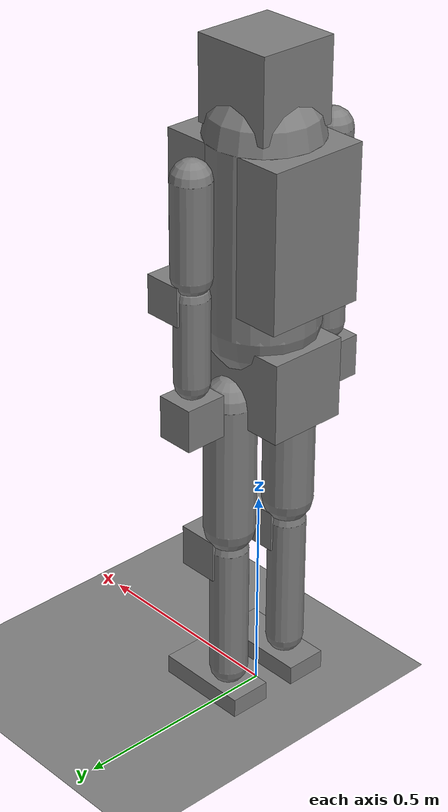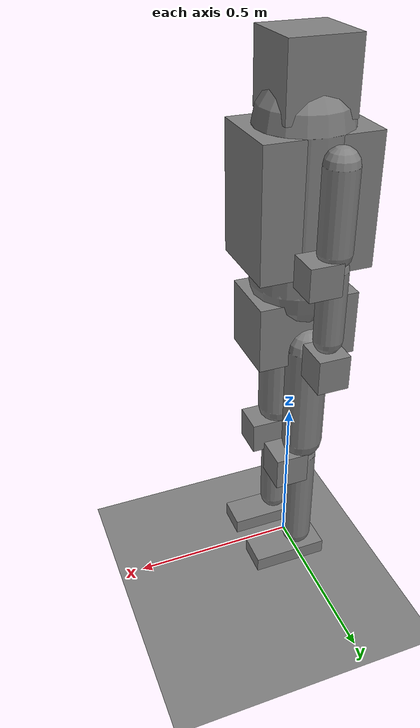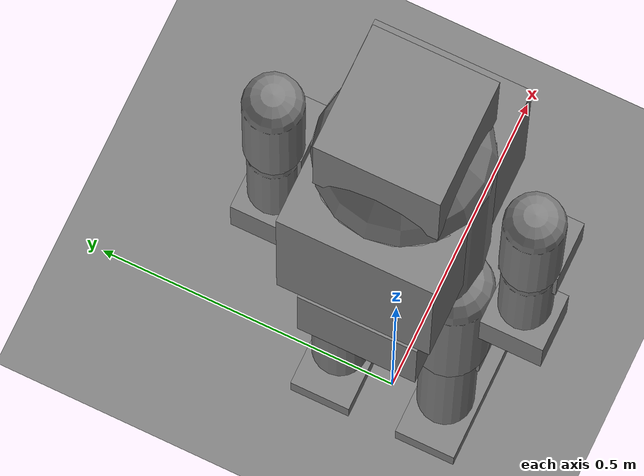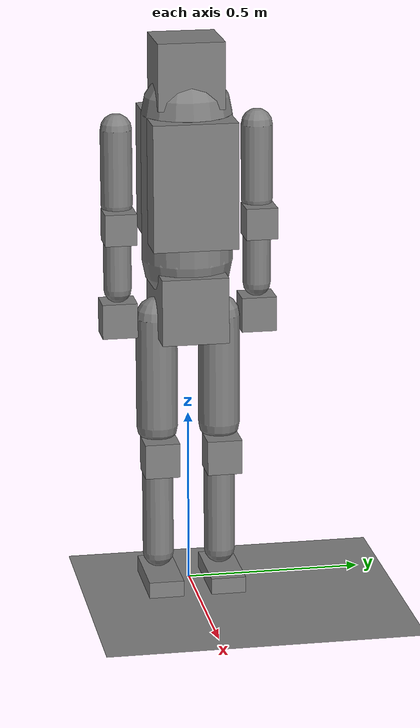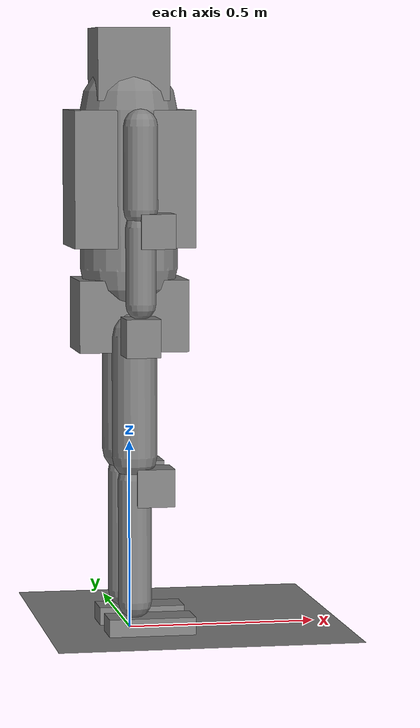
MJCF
<mujoco model="multibrain_humanoid">
  <option timestep="0.005"><flag multiccd="disable"/></option>
  <default>
    <joint type="hinge" armature="0.02" damping="2" frictionloss="0.2" limited="true" solreflimit="0.01 1" solimplimit="0.99 0.999 0.001"/>
    <geom condim="3" friction="1.0 0.005 0.0001" solimp="0.9 0.99 0.001" solref="0.01 1"/>
    <general dyntype="filter" dynprm="0.04" ctrlrange="-1 1" ctrllimited="true"/>
  </default>
  <worldbody>
    <geom name="floor" type="plane" size="0 0 1" margin="0.01"/>
    <body name="pelvis" pos="0 0 0.84">
      <freejoint/>
      <geom type="box" size="0.14 0.09 0.09" mass="6.2"/>
      <site name="imu"/>
      <site name="touch_pelvis" type="box" pos="0 0 0" size="0.145 0.095 0.095"/>
      <body name="torso" pos="0 0 0.12">
      <joint name="waist_z" axis="0 0 1" range="-40 40"/>
      <joint name="waist_y" axis="1 0 0" range="-30 30"/>
      <joint name="waist_x" axis="0 -1 0" range="-60 30"/>
      <geom type="capsule" fromto="0 0 0 0 0 0.42" size="0.13" mass="15.0"/>
      <site name="torso_frame"/>
      <site name="touch_chest" type="box" pos="0.10 0 0.24" size="0.06 0.12 0.18"/>
      <site name="touch_back" type="box" pos="-0.10 0 0.24" size="0.06 0.12 0.18"/>
      <body name="head" pos="0 0 0.48">
      <joint name="neck_y" axis="1 0 0" range="-45 45"/>
      <joint name="neck_z" axis="0 0 1" range="-60 60"/>
      <geom type="sphere" pos="0 0 0.06" size="0.09" mass="3.3"/>
      <site name="touch_head" type="box" pos="0 0 0.06" size="0.095 0.095 0.095"/>
      </body>
      <body name="upper_arm_L" pos="0 0.2 0.38">
      <joint name="shoulder_L_x" axis="0 -1 0" range="-60 170"/>
      <joint name="shoulder_L_y" axis="1 0 0" range="-30 150"/>
      <joint name="shoulder_L_z" axis="0 0 1" range="-80 80"/>
      <geom type="capsule" fromto="0 0 0 0 0 -0.215" size="0.045" mass="1.3"/>
      <body name="forearm_L" pos="0 0 -0.26">
      <joint name="elbow_L" axis="0 -1 0" range="0 150"/>
      <geom type="capsule" fromto="0 0 0 0 0 -0.200" size="0.04" mass="0.7"/>
      <site name="touch_elbow_L" type="box" pos="0.04 0 -0.01" size="0.045 0.045 0.045"/>
      <body name="hand_L" pos="0 0 -0.24">
      <joint name="wrist_L" axis="0 -1 0" range="-70 70"/>
      <geom type="box" pos="0 0 -0.045" size="0.035 0.045 0.045" mass="0.3"/>
      <site name="touch_hand_L" type="box" pos="0 0 -0.045" size="0.045 0.05 0.05"/>
      </body>
      </body>
      </body>
      <body name="upper_arm_R" pos="0 -0.2 0.38">
      <joint name="shoulder_R_x" axis="0 -1 0" range="-60 170"/>
      <joint name="shoulder_R_y" axis="-1 0 0" range="-30 150"/>
      <joint name="shoulder_R_z" axis="0 0 -1" range="-80 80"/>
      <geom type="capsule" fromto="0 0 0 0 0 -0.215" size="0.045" mass="1.3"/>
      <body name="forearm_R" pos="0 0 -0.26">
      <joint name="elbow_R" axis="0 -1 0" range="0 150"/>
      <geom type="capsule" fromto="0 0 0 0 0 -0.200" size="0.04" mass="0.7"/>
      <site name="touch_elbow_R" type="box" pos="0.04 0 -0.01" size="0.045 0.045 0.045"/>
      <body name="hand_R" pos="0 0 -0.24">
      <joint name="wrist_R" axis="0 -1 0" range="-70 70"/>
      <geom type="box" pos="0 0 -0.045" size="0.035 0.045 0.045" mass="0.3"/>
      <site name="touch_hand_R" type="box" pos="0 0 -0.045" size="0.045 0.05 0.05"/>
      </body>
      </body>
      </body>
      </body>
      <body name="thigh_L" pos="0 0.09 -0.05">
      <joint name="hip_L_x" axis="0 -1 0" range="-30 120"/>
      <joint name="hip_L_y" axis="1 0 0" range="-40 40"/>
      <joint name="hip_L_z" axis="0 0 1" range="-40 40"/>
      <geom type="capsule" fromto="0 0 0 0 0 -0.320" size="0.06" mass="7.4"/>
      <body name="shin_L" pos="0 0 -0.38">
      <joint name="knee_L" axis="0 1 0" range="0 150"/>
      <geom type="capsule" fromto="0 0 0 0 0 -0.325" size="0.045" mass="2.4"/>
      <site name="touch_knee_L" type="box" pos="0.05 0 -0.02" size="0.05 0.05 0.05"/>
      <body name="foot_L" pos="0 0 -0.37">
      <joint name="ankle_L_x" axis="0 -1 0" range="-45 30"/>
      <joint name="ankle_L_y" axis="1 0 0" range="-25 25"/>
      <geom type="box" pos="0.04 0 -0.02" size="0.11 0.045 0.02" mass="0.65"/>
      <site name="touch_foot_L" type="box" pos="0.04 0 -0.02" size="0.115 0.05 0.025"/>
      </body>
      </body>
      </body>
      <body name="thigh_R" pos="0 -0.09 -0.05">
      <joint name="hip_R_x" axis="0 -1 0" range="-30 120"/>
      <joint name="hip_R_y" axis="-1 0 0" range="-40 40"/>
      <joint name="hip_R_z" axis="0 0 -1" range="-40 40"/>
      <geom type="capsule" fromto="0 0 0 0 0 -0.320" size="0.06" mass="7.4"/>
      <body name="shin_R" pos="0 0 -0.38">
      <joint name="knee_R" axis="0 1 0" range="0 150"/>
      <geom type="capsule" fromto="0 0 0 0 0 -0.325" size="0.045" mass="2.4"/>
      <site name="touch_knee_R" type="box" pos="0.05 0 -0.02" size="0.05 0.05 0.05"/>
      <body name="foot_R" pos="0 0 -0.37">
      <joint name="ankle_R_x" axis="0 -1 0" range="-45 30"/>
      <joint name="ankle_R_y" axis="-1 0 0" range="-25 25"/>
      <geom type="box" pos="0.04 0 -0.02" size="0.11 0.045 0.02" mass="0.65"/>
      <site name="touch_foot_R" type="box" pos="0.04 0 -0.02" size="0.115 0.05 0.025"/>
      </body>
      </body>
      </body>
    </body>
  </worldbody>
  <contact>
    <exclude body1="pelvis" body2="torso"/>
    <exclude body1="torso" body2="head"/>
    <exclude body1="torso" body2="upper_arm_L"/>
    <exclude body1="torso" body2="upper_arm_R"/>
    <exclude body1="upper_arm_L" body2="forearm_L"/>
    <exclude body1="upper_arm_R" body2="forearm_R"/>
    <exclude body1="forearm_L" body2="hand_L"/>
    <exclude body1="forearm_R" body2="hand_R"/>
    <exclude body1="pelvis" body2="thigh_L"/>
    <exclude body1="pelvis" body2="thigh_R"/>
    <exclude body1="thigh_L" body2="shin_L"/>
    <exclude body1="thigh_R" body2="shin_R"/>
    <exclude body1="shin_L" body2="foot_L"/>
    <exclude body1="shin_R" body2="foot_R"/>
  </contact>
  <actuator>
    <general name="waist_z" joint="waist_z" gear="60"/>
    <general name="waist_y" joint="waist_y" gear="80"/>
    <general name="waist_x" joint="waist_x" gear="100"/>
    <general name="neck_y" joint="neck_y" gear="15"/>
    <general name="neck_z" joint="neck_z" gear="15"/>
    <general name="shoulder_L_x" joint="shoulder_L_x" gear="40"/>
    <general name="shoulder_L_y" joint="shoulder_L_y" gear="40"/>
    <general name="shoulder_L_z" joint="shoulder_L_z" gear="25"/>
    <general name="elbow_L" joint="elbow_L" gear="30"/>
    <general name="wrist_L" joint="wrist_L" gear="8"/>
    <general name="hip_L_x" joint="hip_L_x" gear="120"/>
    <general name="hip_L_y" joint="hip_L_y" gear="80"/>
    <general name="hip_L_z" joint="hip_L_z" gear="50"/>
    <general name="knee_L" joint="knee_L" gear="120"/>
    <general name="ankle_L_x" joint="ankle_L_x" gear="80"/>
    <general name="ankle_L_y" joint="ankle_L_y" gear="30"/>
    <general name="shoulder_R_x" joint="shoulder_R_x" gear="40"/>
    <general name="shoulder_R_y" joint="shoulder_R_y" gear="40"/>
    <general name="shoulder_R_z" joint="shoulder_R_z" gear="25"/>
    <general name="elbow_R" joint="elbow_R" gear="30"/>
    <general name="wrist_R" joint="wrist_R" gear="8"/>
    <general name="hip_R_x" joint="hip_R_x" gear="120"/>
    <general name="hip_R_y" joint="hip_R_y" gear="80"/>
    <general name="hip_R_z" joint="hip_R_z" gear="50"/>
    <general name="knee_R" joint="knee_R" gear="120"/>
    <general name="ankle_R_x" joint="ankle_R_x" gear="80"/>
    <general name="ankle_R_y" joint="ankle_R_y" gear="30"/>
  </actuator>
  <sensor>
    <jointpos name="jointpos_waist_z" joint="waist_z"/>
    <jointpos name="jointpos_waist_y" joint="waist_y"/>
    <jointpos name="jointpos_waist_x" joint="waist_x"/>
    <jointpos name="jointpos_neck_y" joint="neck_y"/>
    <jointpos name="jointpos_neck_z" joint="neck_z"/>
    <jointpos name="jointpos_shoulder_L_x" joint="shoulder_L_x"/>
    <jointpos name="jointpos_shoulder_L_y" joint="shoulder_L_y"/>
    <jointpos name="jointpos_shoulder_L_z" joint="shoulder_L_z"/>
    <jointpos name="jointpos_elbow_L" joint="elbow_L"/>
    <jointpos name="jointpos_wrist_L" joint="wrist_L"/>
    <jointpos name="jointpos_hip_L_x" joint="hip_L_x"/>
    <jointpos name="jointpos_hip_L_y" joint="hip_L_y"/>
    <jointpos name="jointpos_hip_L_z" joint="hip_L_z"/>
    <jointpos name="jointpos_knee_L" joint="knee_L"/>
    <jointpos name="jointpos_ankle_L_x" joint="ankle_L_x"/>
    <jointpos name="jointpos_ankle_L_y" joint="ankle_L_y"/>
    <jointpos name="jointpos_shoulder_R_x" joint="shoulder_R_x"/>
    <jointpos name="jointpos_shoulder_R_y" joint="shoulder_R_y"/>
    <jointpos name="jointpos_shoulder_R_z" joint="shoulder_R_z"/>
    <jointpos name="jointpos_elbow_R" joint="elbow_R"/>
    <jointpos name="jointpos_wrist_R" joint="wrist_R"/>
    <jointpos name="jointpos_hip_R_x" joint="hip_R_x"/>
    <jointpos name="jointpos_hip_R_y" joint="hip_R_y"/>
    <jointpos name="jointpos_hip_R_z" joint="hip_R_z"/>
    <jointpos name="jointpos_knee_R" joint="knee_R"/>
    <jointpos name="jointpos_ankle_R_x" joint="ankle_R_x"/>
    <jointpos name="jointpos_ankle_R_y" joint="ankle_R_y"/>
    <jointvel name="jointvel_waist_z" joint="waist_z"/>
    <jointvel name="jointvel_waist_y" joint="waist_y"/>
    <jointvel name="jointvel_waist_x" joint="waist_x"/>
    <jointvel name="jointvel_neck_y" joint="neck_y"/>
    <jointvel name="jointvel_neck_z" joint="neck_z"/>
    <jointvel name="jointvel_shoulder_L_x" joint="shoulder_L_x"/>
    <jointvel name="jointvel_shoulder_L_y" joint="shoulder_L_y"/>
    <jointvel name="jointvel_shoulder_L_z" joint="shoulder_L_z"/>
    <jointvel name="jointvel_elbow_L" joint="elbow_L"/>
    <jointvel name="jointvel_wrist_L" joint="wrist_L"/>
    <jointvel name="jointvel_hip_L_x" joint="hip_L_x"/>
    <jointvel name="jointvel_hip_L_y" joint="hip_L_y"/>
    <jointvel name="jointvel_hip_L_z" joint="hip_L_z"/>
    <jointvel name="jointvel_knee_L" joint="knee_L"/>
    <jointvel name="jointvel_ankle_L_x" joint="ankle_L_x"/>
    <jointvel name="jointvel_ankle_L_y" joint="ankle_L_y"/>
    <jointvel name="jointvel_shoulder_R_x" joint="shoulder_R_x"/>
    <jointvel name="jointvel_shoulder_R_y" joint="shoulder_R_y"/>
    <jointvel name="jointvel_shoulder_R_z" joint="shoulder_R_z"/>
    <jointvel name="jointvel_elbow_R" joint="elbow_R"/>
    <jointvel name="jointvel_wrist_R" joint="wrist_R"/>
    <jointvel name="jointvel_hip_R_x" joint="hip_R_x"/>
    <jointvel name="jointvel_hip_R_y" joint="hip_R_y"/>
    <jointvel name="jointvel_hip_R_z" joint="hip_R_z"/>
    <jointvel name="jointvel_knee_R" joint="knee_R"/>
    <jointvel name="jointvel_ankle_R_x" joint="ankle_R_x"/>
    <jointvel name="jointvel_ankle_R_y" joint="ankle_R_y"/>
    <framequat name="framequat_imu" objtype="site" objname="imu"/>
    <gyro name="gyro_imu" site="imu"/>
    <velocimeter name="velocimeter_imu" site="imu"/>
    <framepos name="framepos_imu" objtype="site" objname="imu"/>
    <touch name="touch_foot_L" site="touch_foot_L"/>
    <touch name="touch_foot_R" site="touch_foot_R"/>
    <touch name="touch_hand_L" site="touch_hand_L"/>
    <touch name="touch_hand_R" site="touch_hand_R"/>
    <touch name="touch_knee_L" site="touch_knee_L"/>
    <touch name="touch_knee_R" site="touch_knee_R"/>
    <touch name="touch_elbow_L" site="touch_elbow_L"/>
    <touch name="touch_elbow_R" site="touch_elbow_R"/>
    <touch name="touch_pelvis" site="touch_pelvis"/>
    <touch name="touch_chest" site="touch_chest"/>
    <touch name="touch_back" site="touch_back"/>
    <touch name="touch_head" site="touch_head"/>
    <framezaxis name="framezaxis_torso" objtype="site" objname="torso_frame"/>
    <framelinvel name="framelinvel_imu" objtype="site" objname="imu"/>
    <framelinvel name="framelinvel_touch_head" objtype="site" objname="touch_head"/>
    <framelinvel name="framelinvel_touch_chest" objtype="site" objname="touch_chest"/>
    <framelinvel name="framelinvel_touch_back" objtype="site" objname="touch_back"/>
    <framelinvel name="framelinvel_touch_pelvis" objtype="site" objname="touch_pelvis"/>
    <framexaxis name="framexaxis_touch_head" objtype="site" objname="touch_head"/>
  </sensor>
</mujoco>
